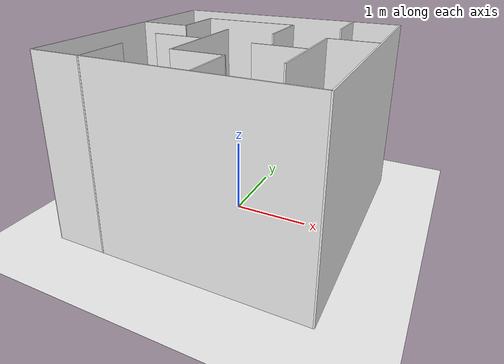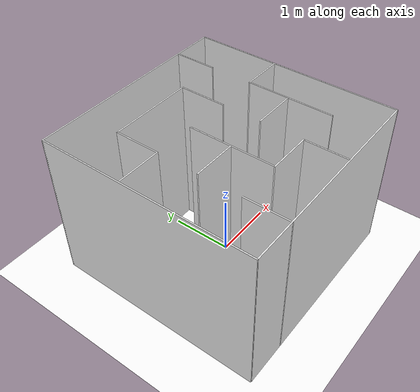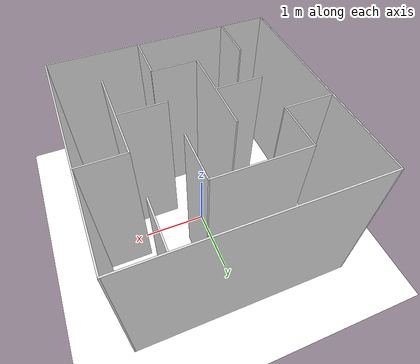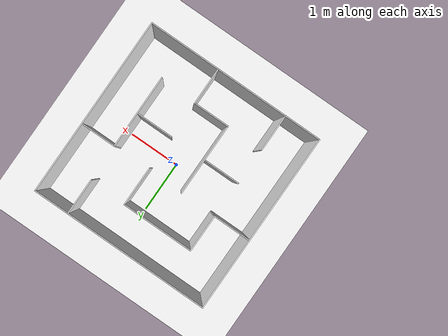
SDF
<sdf version="1.7">
 <world name="default">
  <light name="sun" type="directional">
   <pose>0 0 10 0 -0 0</pose>
   <diffuse>0.8 0.8 0.8 1</diffuse>
   <specular>0.2 0.2 0.2 1</specular>
   <attenuation>
    <range>1000</range>
    <constant>0.9</constant>
    <linear>0.01</linear>
    <quadratic>0.001</quadratic>
   </attenuation>
   <direction>-0.5 0.1 -0.9</direction>
   <spot><inner_angle>0</inner_angle><outer_angle>0</outer_angle><falloff>0</falloff></spot>
  </light>
  <model name="ground_plane">
   <static>1</static>
   <link name="link">
    <collision name="collision">
     <geometry><plane><normal>0 0 1</normal><size>100 100</size></plane></geometry>
     <surface><friction><ode><mu>100</mu><mu2>50</mu2></ode></friction></surface>
    </collision>
    <visual name="visual">
     <cast_shadows>0</cast_shadows>
     <geometry><plane><normal>0 0 1</normal><size>100 100</size></plane></geometry>
     <material><ambient>1 1 1 1</ambient><diffuse>1 1 1 1</diffuse><specular>0.1 0.1 0.1 1</specular></material>
    </visual>
   </link>
  </model>
  <gravity>0 0 -9.8</gravity>
  <magnetic_field>6e-06 2.3e-05 -4.2e-05</magnetic_field>
  <atmosphere type="adiabatic"/>
  <physics type="ode">
   <max_step_size>0.001</max_step_size>
   <real_time_factor>1</real_time_factor>
   <real_time_update_rate>1000</real_time_update_rate>
  </physics>
  <scene><ambient>0.4 0.4 0.4 1</ambient><background>0.7 0.7 0.7 1</background><shadows>1</shadows></scene>
  <audio><device>default</device></audio>
  <spherical_coordinates>
   <surface_model>EARTH_WGS84</surface_model>
   <latitude_deg>0</latitude_deg>
   <longitude_deg>0</longitude_deg>
   <elevation>0</elevation>
   <heading_deg>0</heading_deg>
  </spherical_coordinates>
  <model name="laberinto_mejorado">
   <pose>-0.015 -0.003189 0 0 -0 0</pose>
   <link name="Wall_0">
    <collision name="Wall_0_Collision">
     <geometry><box><size>3.45003 0.02 2.5</size></box></geometry>
     <pose>0 0 1.25 0 -0 0</pose>
    </collision>
    <visual name="Wall_0_Visual">
     <pose>0 0 1.25 0 -0 0</pose>
     <geometry><box><size>3.45003 0.02 2.5</size></box></geometry>
     <material>
      <ambient>0.9 0.9 0.9 1</ambient>
      <diffuse>0.9 0.9 0.9 1</diffuse>
      <specular>0.2 0.2 0.2 1</specular>
      <emissive>0.1 0.1 0.1 1</emissive>
     </material>
     <meta><layer>0</layer></meta>
    </visual>
    <pose>-1.715 0.003189 0 0 -0 1.5708</pose>
   </link>
   <link name="Wall_1">
    <collision name="Wall_1_Collision">
     <geometry><box><size>3.45 0.02 2.5</size></box></geometry>
     <pose>0 0 1.25 0 -0 0</pose>
    </collision>
    <visual name="Wall_1_Visual">
     <pose>0 0 1.25 0 -0 0</pose>
     <geometry><box><size>3.45 0.02 2.5</size></box></geometry>
     <material>
      <ambient>0.9 0.9 0.9 1</ambient>
      <diffuse>0.9 0.9 0.9 1</diffuse>
      <specular>0.2 0.2 0.2 1</specular>
      <emissive>0.1 0.1 0.1 1</emissive>
     </material>
     <meta><layer>0</layer></meta>
    </visual>
    <pose>-0 1.71569 0 0 -0 -0.001458</pose>
   </link>
   <link name="Wall_17">
    <collision name="Wall_17_Collision">
     <geometry><box><size>0.716047 0.02 2.5</size></box></geometry>
     <pose>0 0 1.25 0 -0 0</pose>
    </collision>
    <visual name="Wall_17_Visual">
     <pose>0 0 1.25 0 -0 0</pose>
     <geometry><box><size>0.716047 0.02 2.5</size></box></geometry>
     <material>
      <ambient>0.9 0.9 0.9 1</ambient>
      <diffuse>0.9 0.9 0.9 1</diffuse>
      <specular>0.2 0.2 0.2 1</specular>
      <emissive>0.1 0.1 0.1 1</emissive>
     </material>
     <meta><layer>0</layer></meta>
    </visual>
    <pose>-1.35 0.343189 0 0 -0 0</pose>
   </link>
   <link name="Wall_18">
    <collision name="Wall_18_Collision">
     <geometry><box><size>0.725 0.02 2.5</size></box></geometry>
     <pose>0 0 1.25 0 -0 0</pose>
    </collision>
    <visual name="Wall_18_Visual">
     <pose>0 0 1.25 0 -0 0</pose>
     <geometry><box><size>0.725 0.02 2.5</size></box></geometry>
     <material>
      <ambient>0.9 0.9 0.9 1</ambient>
      <diffuse>0.9 0.9 0.9 1</diffuse>
      <specular>0.2 0.2 0.2 1</specular>
      <emissive>0.1 0.1 0.1 1</emissive>
     </material>
     <meta><layer>0</layer></meta>
    </visual>
    <pose>-1.002 0.695689 0 0 -0 1.5708</pose>
   </link>
   <link name="Wall_19">
    <collision name="Wall_19_Collision">
     <geometry><box><size>1.37467 0.02 2.5</size></box></geometry>
     <pose>0 0 1.25 0 -0 0</pose>
    </collision>
    <visual name="Wall_19_Visual">
     <pose>0 0 1.25 0 -0 0</pose>
     <geometry><box><size>1.37467 0.02 2.5</size></box></geometry>
     <material>
      <ambient>0.9 0.9 0.9 1</ambient>
      <diffuse>0.9 0.9 0.9 1</diffuse>
      <specular>0.2 0.2 0.2 1</specular>
      <emissive>0.1 0.1 0.1 1</emissive>
     </material>
     <meta><layer>0</layer></meta>
    </visual>
    <pose>-0.3245 1.04819 0 0 -0 0</pose>
   </link>
   <link name="Wall_2">
    <collision name="Wall_2_Collision">
     <geometry><box><size>3.45016 0.02 2.5</size></box></geometry>
     <pose>0 0 1.25 0 -0 0</pose>
    </collision>
    <visual name="Wall_2_Visual">
     <pose>0 0 1.25 0 -0 0</pose>
     <geometry><box><size>3.45016 0.02 2.5</size></box></geometry>
     <material>
      <ambient>0.9 0.9 0.9 1</ambient>
      <diffuse>0.9 0.9 0.9 1</diffuse>
      <specular>0.2 0.2 0.2 1</specular>
      <emissive>0.1 0.1 0.1 1</emissive>
     </material>
     <meta><layer>0</layer></meta>
    </visual>
    <pose>1.715 -0.001811 0 0 -0 -1.5708</pose>
   </link>
   <link name="Wall_20">
    <collision name="Wall_20_Collision">
     <geometry><box><size>0.756587 0.02 2.5</size></box></geometry>
     <pose>0 0 1.25 0 -0 0</pose>
    </collision>
    <visual name="Wall_20_Visual">
     <pose>0 0 1.25 0 -0 0</pose>
     <geometry><box><size>0.756587 0.02 2.5</size></box></geometry>
     <material>
      <ambient>0.9 0.9 0.9 1</ambient>
      <diffuse>0.9 0.9 0.9 1</diffuse>
      <specular>0.2 0.2 0.2 1</specular>
      <emissive>0.1 0.1 0.1 1</emissive>
     </material>
     <meta><layer>0</layer></meta>
    </visual>
    <pose>0.353 0.680189 0 0 -0 -1.5708</pose>
   </link>
   <link name="Wall_22">
    <collision name="Wall_22_Collision">
     <geometry><box><size>0.683051 0.02 2.5</size></box></geometry>
     <pose>0 0 1.25 0 -0 0</pose>
    </collision>
    <visual name="Wall_22_Visual">
     <pose>0 0 1.25 0 -0 0</pose>
     <geometry><box><size>0.683051 0.02 2.5</size></box></geometry>
     <material>
      <ambient>0.9 0.9 0.9 1</ambient>
      <diffuse>0.9 0.9 0.9 1</diffuse>
      <specular>0.2 0.2 0.2 1</specular>
      <emissive>0.1 0.1 0.1 1</emissive>
     </material>
     <meta><layer>0</layer></meta>
    </visual>
    <pose>1.045 1.36769 0 0 -0 -1.5708</pose>
   </link>
   <link name="Wall_24">
    <collision name="Wall_24_Collision">
     <geometry><box><size>0.67604 0.02 2.5</size></box></geometry>
     <pose>0 0 1.25 0 -0 0</pose>
    </collision>
    <visual name="Wall_24_Visual">
     <pose>0 0 1.25 0 -0 0</pose>
     <geometry><box><size>0.67604 0.02 2.5</size></box></geometry>
     <material>
      <ambient>0.9 0.9 0.9 1</ambient>
      <diffuse>0.9 0.9 0.9 1</diffuse>
      <specular>0.2 0.2 0.2 1</specular>
      <emissive>0.1 0.1 0.1 1</emissive>
     </material>
     <meta><layer>0</layer></meta>
    </visual>
    <pose>1.38 0.338189 0 0 -0 3.14159</pose>
   </link>
   <link name="Wall_25">
    <collision name="Wall_25_Collision">
     <geometry><box><size>1.41425 0.02 2.5</size></box></geometry>
     <pose>0 0 1.25 0 -0 0</pose>
    </collision>
    <visual name="Wall_25_Visual">
     <pose>0 0 1.25 0 -0 0</pose>
     <geometry><box><size>1.41425 0.02 2.5</size></box></geometry>
     <material>
      <ambient>0.9 0.9 0.9 1</ambient>
      <diffuse>0.9 0.9 0.9 1</diffuse>
      <specular>0.2 0.2 0.2 1</specular>
      <emissive>0.1 0.1 0.1 1</emissive>
     </material>
     <meta><layer>0</layer></meta>
    </visual>
    <pose>1.052 -0.359311 0 0 -0 -1.5708</pose>
   </link>
   <link name="Wall_27">
    <collision name="Wall_27_Collision">
     <geometry><box><size>0.708214 0.02 2.5</size></box></geometry>
     <pose>0 0 1.25 0 -0 0</pose>
    </collision>
    <visual name="Wall_27_Visual">
     <pose>0 0 1.25 0 -0 0</pose>
     <geometry><box><size>0.708214 0.02 2.5</size></box></geometry>
     <material>
      <ambient>0.9 0.9 0.9 1</ambient>
      <diffuse>0.9 0.9 0.9 1</diffuse>
      <specular>0.2 0.2 0.2 1</specular>
      <emissive>0.1 0.1 0.1 1</emissive>
     </material>
     <meta><layer>0</layer></meta>
    </visual>
    <pose>0.702 -0.333811 0 0 -0 3.14159</pose>
   </link>
   <link name="Wall_29">
    <collision name="Wall_29_Collision">
     <geometry><box><size>0.699077 0.02 2.5</size></box></geometry>
     <pose>0 0 1.25 0 -0 0</pose>
    </collision>
    <visual name="Wall_29_Visual">
     <pose>0 0 1.25 0 -0 0</pose>
     <geometry><box><size>0.699077 0.02 2.5</size></box></geometry>
     <material>
      <ambient>0.9 0.9 0.9 1</ambient>
      <diffuse>0.9 0.9 0.9 1</diffuse>
      <specular>0.2 0.2 0.2 1</specular>
      <emissive>0.1 0.1 0.1 1</emissive>
     </material>
     <meta><layer>0</layer></meta>
    </visual>
    <pose>0.355 -1.36281 0 0 -0 1.5708</pose>
   </link>
   <link name="Wall_3">
    <collision name="Wall_3_Collision">
     <geometry><box><size>3.43585 0.02 2.5</size></box></geometry>
     <pose>0 0 1.25 0 -0 0</pose>
    </collision>
    <visual name="Wall_3_Visual">
     <pose>0 0 1.25 0 -0 0</pose>
     <geometry><box><size>3.43585 0.02 2.5</size></box></geometry>
     <material>
      <ambient>0.9 0.9 0.9 1</ambient>
      <diffuse>0.9 0.9 0.9 1</diffuse>
      <specular>0.2 0.2 0.2 1</specular>
      <emissive>0.1 0.1 0.1 1</emissive>
     </material>
     <meta><layer>0</layer></meta>
    </visual>
    <pose>0.007 -1.71681 0 0 -0 3.14159</pose>
   </link>
   <link name="Wall_30">
    <collision name="Wall_30_Collision">
     <geometry><box><size>0.7 0.02 2.5</size></box></geometry>
     <pose>0 0 1.25 0 -0 0</pose>
    </collision>
    <visual name="Wall_30_Visual">
     <pose>0 0 1.25 0 -0 0</pose>
     <geometry><box><size>0.7 0.02 2.5</size></box></geometry>
     <material>
      <ambient>0.9 0.9 0.9 1</ambient>
      <diffuse>0.9 0.9 0.9 1</diffuse>
      <specular>0.2 0.2 0.2 1</specular>
      <emissive>0.1 0.1 0.1 1</emissive>
     </material>
     <meta><layer>0</layer></meta>
    </visual>
    <pose>0.015 -1.02281 0 0 -0 3.14159</pose>
   </link>
   <link name="Wall_31">
    <collision name="Wall_31_Collision">
     <geometry><box><size>1.38092 0.02 2.5</size></box></geometry>
     <pose>0 0 1.25 0 -0 0</pose>
    </collision>
    <visual name="Wall_31_Visual">
     <pose>0 0 1.25 0 -0 0</pose>
     <geometry><box><size>1.38092 0.02 2.5</size></box></geometry>
     <material>
      <ambient>0.9 0.9 0.9 1</ambient>
      <diffuse>0.9 0.9 0.9 1</diffuse>
      <specular>0.2 0.2 0.2 1</specular>
      <emissive>0.1 0.1 0.1 1</emissive>
     </material>
     <meta><layer>0</layer></meta>
    </visual>
    <pose>-0.325 -0.342311 0 0 -0 1.5708</pose>
   </link>
   <link name="Wall_33">
    <collision name="Wall_33_Collision">
     <geometry><box><size>0.705387 0.02 2.5</size></box></geometry>
     <pose>0 0 1.25 0 -0 0</pose>
    </collision>
    <visual name="Wall_33_Visual">
     <pose>0 0 1.25 0 -0 0</pose>
     <geometry><box><size>0.705387 0.02 2.5</size></box></geometry>
     <material>
      <ambient>0.9 0.9 0.9 1</ambient>
      <diffuse>0.9 0.9 0.9 1</diffuse>
      <specular>0.2 0.2 0.2 1</specular>
      <emissive>0.1 0.1 0.1 1</emissive>
     </material>
     <meta><layer>0</layer></meta>
    </visual>
    <pose>-0.6695 -0.335811 0 0 -0 3.14159</pose>
   </link>
   <link name="Wall_35">
    <collision name="Wall_35_Collision">
     <geometry><box><size>0.713786 0.02 2.5</size></box></geometry>
     <pose>0 0 1.25 0 -0 0</pose>
    </collision>
    <visual name="Wall_35_Visual">
     <pose>0 0 1.25 0 -0 0</pose>
     <geometry><box><size>0.713786 0.02 2.5</size></box></geometry>
     <material>
      <ambient>0.9 0.9 0.9 1</ambient>
      <diffuse>0.9 0.9 0.9 1</diffuse>
      <specular>0.2 0.2 0.2 1</specular>
      <emissive>0.1 0.1 0.1 1</emissive>
     </material>
     <meta><layer>0</layer></meta>
    </visual>
    <pose>-1.017 -1.37131 0 0 -0 1.5708</pose>
   </link>
   <static>1</static>
  </model>
 </world>
</sdf>
